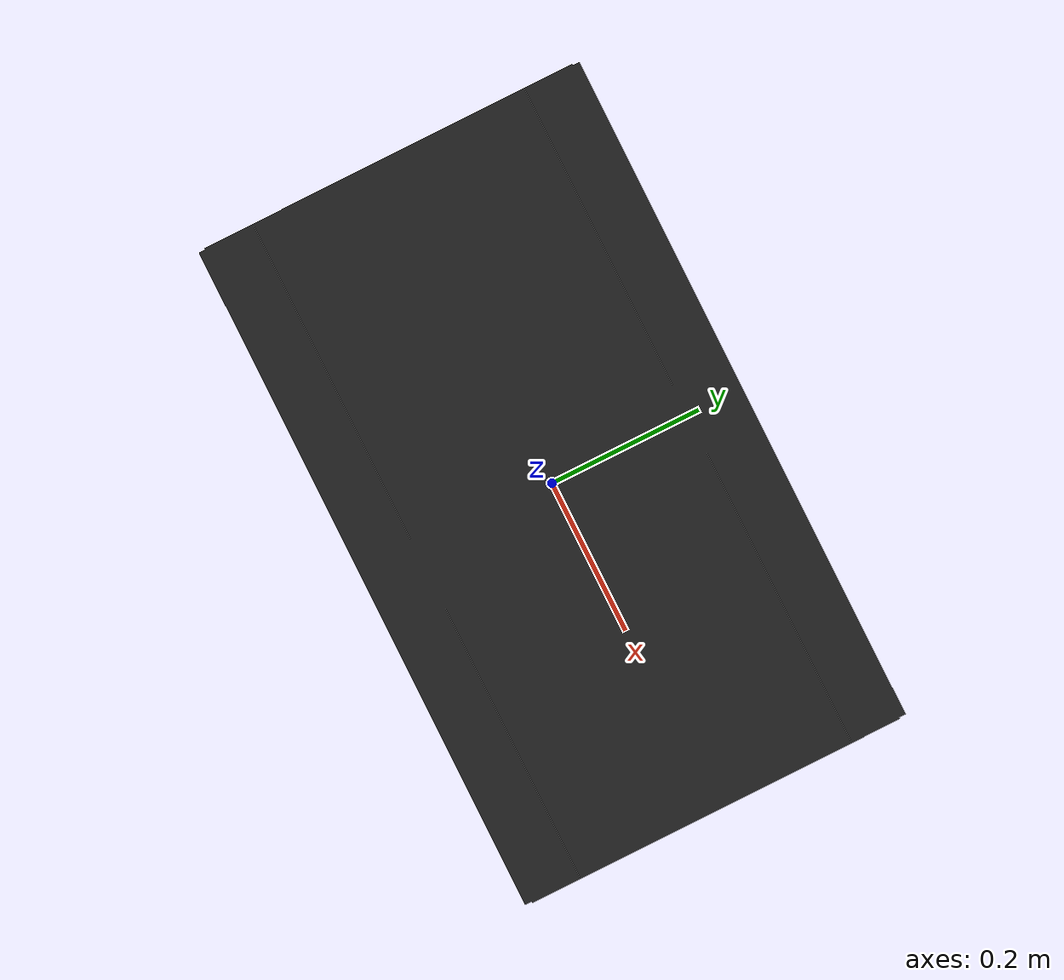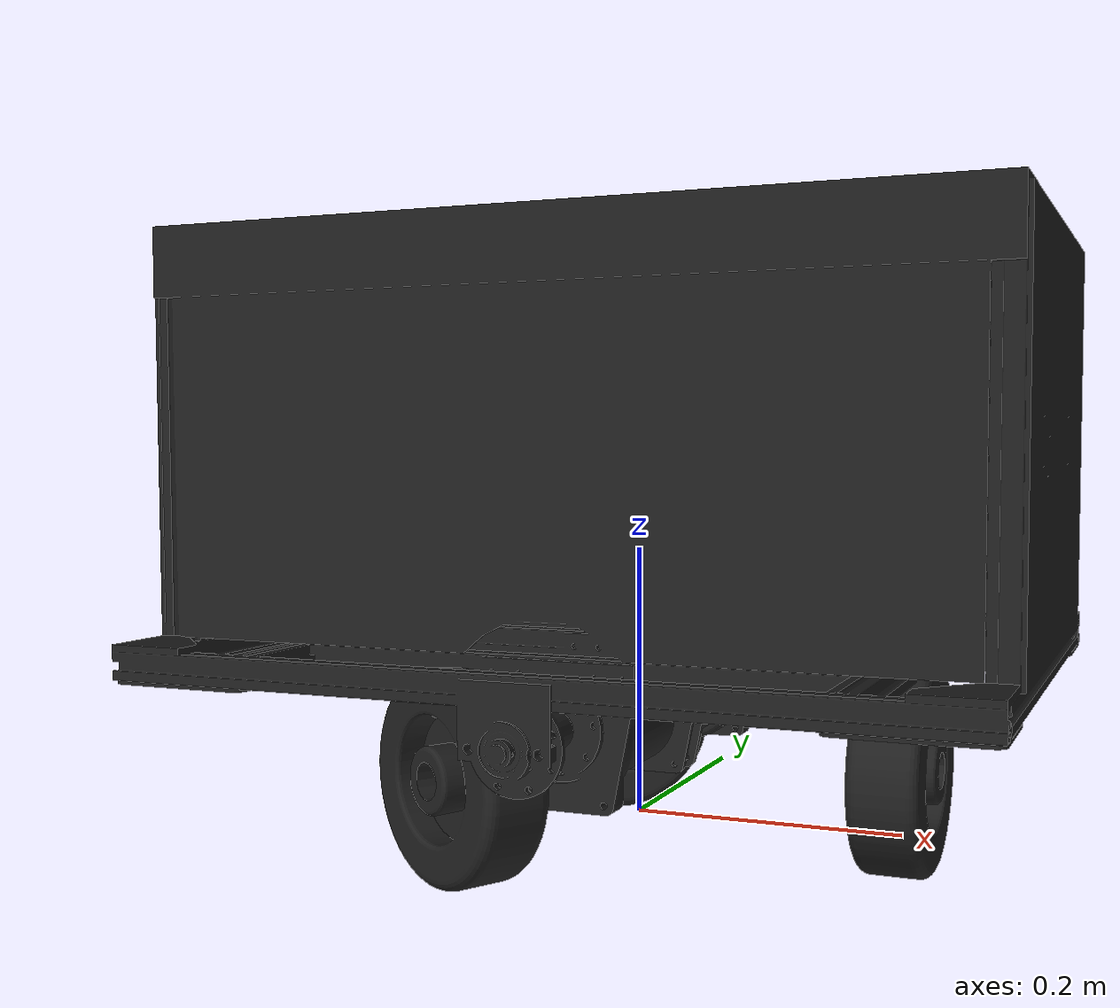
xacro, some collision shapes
<?xml version="1.0" ?>
<robot name="turtlebot3_burger" xmlns:xacro="http://ros.org/wiki/xacro">
  <xacro:include filename="$(find turtlebot3_description)/urdf/common_properties.xacro"/>
  <xacro:include filename="$(find turtlebot3_description)/urdf/turtlebot3_burger.gazebo.xacro"/>

  <link name="base_footprint"/>

  <joint name="base_joint" type="fixed">
    <parent link="base_footprint"/>
    <child link="base_link"/>
    <origin xyz="0.0 0.0 0.014" rpy="0 0 0"/>
  </joint>

  <link name="base_link">
    <visual>
      <origin xyz="0 0 0.0" rpy="0 0 0"/>
      <geometry>
        <mesh filename="package://turtlebot3_description/meshes/bases/base_link.STL"/>
      </geometry>
      <material name="light_black"/>
    </visual>

    <collision>
      <origin xyz="0 0 0" rpy="0 0 0"/>
      <geometry>
       <mesh
          filename="package://turtlebot3_description/meshes/bases/base_link.STL"/>
      </geometry>
    </collision>

    <inertial>
      <origin
        xyz="-0.00053554 -0.00072835 0.81804"
        rpy="0 0 0"/>
      <mass value="21.351"/>
      <inertia
        ixx="1.9402"
        ixy="-2.1004E-05"
        ixz="-3.566E-07"
        iyy="1.9403"
        iyz="1.6662E-06"
        izz="0.061579" />
    </inertial>
  </link>

  <joint name="wheel_left_joint" type="continuous">
    <parent link="base_link"/>
    <child link="wheel_left_link"/>
    <origin
      xyz="-0.055483 0.096103 0.035"
      rpy="1.5708 0.51042 0.5236" />
    <axis xyz="0 0 1"/>
  </joint>

  <link name="wheel_left_link">
    <visual>
      <origin xyz="0 0 0" rpy="0 0 0"/>
      <geometry>
        <mesh filename="package://turtlebot3_description/meshes/wheels/wheel_left_link.STL" />
      </geometry>
      <material name="dark"/>
    </visual>

    <collision>
      <origin xyz="0 0 0" rpy="0 0 0"/>
      <geometry>
        <mesh
          filename="package://turtlebot3_description/meshes/wheels/wheel_left_link.STL" />
      </geometry>
    </collision>

    <inertial>
      <origin
        xyz="-1.0847E-05 -6.202E-06 -0.090835"
        rpy="0 0 0" />
      <mass value="0.22052" />
      <inertia
        ixx="5.4192E-05"
        ixy="-1.0371E-09"
        ixz="2.3577E-09"
        iyy="5.4197E-05"
        iyz="-1.3357E-08"
        izz="8.5639E-05" />
      </inertial>
  </link>

  <joint name="wheel_right_joint" type="continuous">
    <parent link="base_link"/>
    <child link="wheel_right_link"/>
    <origin
      xyz="-0.092626 -0.16042 0.035"
      rpy="-1.5708 1.4201 -0.5236"/>
    <axis xyz="0 0 1"/>
  </joint>

  <link name="wheel_right_link">
    <visual>
      <origin xyz="0 0 0" rpy="0 0 0"/>
      <geometry>
        <mesh filename="package://turtlebot3_description/meshes/wheels/wheel_right_link.STL"/>
      </geometry>
      <material name="dark"/>
    </visual>

    <collision>
      <origin xyz="0 0 0" rpy="0 0 0"/>
      <geometry>
        <mesh filename="package://turtlebot3_description/meshes/wheels/wheel_right_link.STL"/>
      </geometry>
    </collision>

    <inertial>
      <origin
        xyz="-1.0847E-05 -6.2009E-06 -0.016547"
        rpy="0 0 0"/>
      <mass value="0.22052" />
      <inertia
        ixx="5.4192E-05"
        ixy="-1.0369E-09"
        ixz="2.3574E-09"
        iyy="5.4197E-05"
        iyz="-1.3358E-08"
        izz="8.5639E-05" />
      </inertial>
  </link>

  <joint name="wheel_front_joint" type="continuous">
    <parent link="base_link"/>
    <child link="wheel_front_link"/>
    <origin
      xyz="0.172 0 0.035"
      rpy="-1.5708 1.1188 1.5708"/>
    <axis xyz="0 0 1"/>
  </joint>

  <link name="wheel_front_link">
    <visual>
      <origin xyz="0 0 0" rpy="0 0 0"/>
      <geometry>
        <mesh filename="package://turtlebot3_description/meshes/wheels/wheel_front_link.STL"/>
      </geometry>
      <material name="dark"/>
    </visual>

    <collision>
      <origin xyz="0 0 0" rpy="0 0 0"/>
      <geometry>
        <mesh filename="package://turtlebot3_description/meshes/wheels/wheel_front_link.STL"/>
      </geometry>
    </collision>

    <inertial>
      <origin
        xyz="-8.1328E-06 -1.1792E-05 -0.029797"
        rpy="0 0 0"/>
      <mass value="0.22052" />
      <inertia
        ixx="5.4192E-05"
        ixy="-1.037E-09"
        ixz="2.3576E-09"
        iyy="5.4197E-05"
        iyz="-1.3357E-08"
        izz="8.5639E-05" />
      </inertial>
  </link>

  <joint name="imu_joint" type="fixed">
    <parent link="base_link"/>
    <child link="imu_link"/>
    <origin xyz="-0.032 0 0.24" rpy="0 0 0"/>
  </joint>

  <link name="imu_link"/>

  <joint name="scan_joint" type="fixed">
    <parent link="base_link"/>
    <child link="base_scan"/>
    <origin xyz="0 0 0.31" rpy="0 0 0"/>
  </joint>

  <link name="base_scan">
    <visual>
      <origin xyz="0 0 0.0" rpy="0 0 90"/>
      <geometry>
        <mesh filename="package://turtlebot3_description/meshes/sensors/lds.stl" scale="0.001 0.001 0.001"/>
      </geometry>
      <material name="dark"/>
    </visual>

    <collision>
      <origin xyz="0.015 0 -0.0065" rpy="0 0 0"/>
      <geometry>
        <cylinder length="0.0315" radius="0.055"/>
      </geometry>
    </collision>

    <inertial>
      <mass value="0.114" />
      <origin xyz="0 0 0" />
      <inertia ixx="0.001" ixy="0.0" ixz="0.0"
               iyy="0.001" iyz="0.0"
               izz="0.001" />
    </inertial>
  </link>

</robot>
